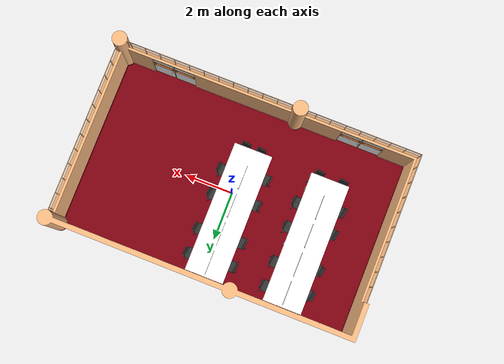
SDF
<?xml version="1.0" ?>
<sdf version="1.7">
  <model name="marlab">
    <!-- make the model dynamic -->
    <static>true</static>

    <link name="world_link">
      <!-- this dummy link holds nothing -->
      <pose>0 0 0 0 0 0</pose>
      <inertial>
        <mass>0.001</mass>
        <inertia>
          <ixx>1e-6</ixx><iyy>1e-6</iyy><izz>1e-6</izz>
        </inertia>
      </inertial>
    </link>

    <link name="floor_link">
      <pose>-6.09 -3.55 0 0 0 0</pose>
      <visual name="floor_visual">
        <geometry>
          <mesh>
            <uri>model://marlab/meshes/floor.stl</uri>
          </mesh>
        </geometry>
        <material>
          <ambient>0.5 0.0 0.06 1</ambient>
          <diffuse>0.5 0.0 0.06 1</diffuse>
        </material>
      </visual>
      <collision name="floor_collision">
        <geometry>
          <mesh><uri>model://marlab/meshes/floor.stl</uri></mesh>
        </geometry>
      </collision>
      <inertial>
        <mass>1.0</mass>
        <inertia>
          <ixx>0.1</ixx><iyy>0.1</iyy><izz>0.1</izz>
        </inertia>
      </inertial>
    </link>

    <link name="walls_link">
      <pose>-6.09 -3.55 0 0 0 0</pose>
      <visual name="walls_visual">
        <geometry>
          <mesh><uri>model://marlab/meshes/walls.stl</uri></mesh>
        </geometry>
        <material>
          <ambient>0.98 0.73 0.51 1</ambient>
          <diffuse>0.98 0.73 0.51 1</diffuse>
        </material>
      </visual>
      <collision name="walls_collision">
        <geometry><mesh><uri>model://marlab/meshes/walls.stl</uri></mesh></geometry>
      </collision>
      <inertial>
        <mass>2.0</mass>
        <inertia>
          <ixx>0.2</ixx><iyy>0.2</iyy><izz>0.2</izz>
        </inertia>
      </inertial>
    </link>

    <link name="wall_window_panes_link">
      <pose>-6.09 -3.55 0 0 0 0</pose>
      <visual name="wall_window_panes_visual">
        <geometry>
          <mesh><uri>model://marlab/meshes/wall_window_panes.stl</uri></mesh>
        </geometry>
        <material>
          <ambient>0.98 0.73 0.51 0.3</ambient>
          <diffuse>0.98 0.73 0.51 0.3</diffuse>
        </material>
      </visual>
      <collision name="wall_window_panes_collision">
        <geometry><mesh><uri>model://marlab/meshes/wall_window_panes.stl</uri></mesh></geometry>
      </collision>
      <inertial>
        <mass>2.0</mass>
        <inertia>
          <ixx>0.2</ixx><iyy>0.2</iyy><izz>0.2</izz>
        </inertia>
      </inertial>
    </link>

    <link name="window_frames_link">
      <pose>-6.09 -3.55 0 0 0 0</pose>
      <visual name="window_frames_visual">
        <geometry>
          <mesh><uri>model://marlab/meshes/window_frames.stl</uri></mesh>
        </geometry>
        <material>
          <ambient>0.88 0.88 0.88 1.0</ambient>
          <diffuse>0.88 0.88 0.88 1.0</diffuse>
        </material>
      </visual>
      <collision name="window_frames_collision">
        <geometry><mesh><uri>model://marlab/meshes/window_frames.stl</uri></mesh></geometry>
      </collision>
      <inertial>
        <mass>2.0</mass>
        <inertia>
          <ixx>0.2</ixx><iyy>0.2</iyy><izz>0.2</izz>
        </inertia>
      </inertial>
    </link>

    <link name="window_panes_link">
      <pose>-6.09 -3.55 0 0 0 0</pose>
      <visual name="window_panes_visual">
        <geometry>
          <mesh><uri>model://marlab/meshes/window_panes.stl</uri></mesh>
        </geometry>
        <material>
          <ambient>0.98 0.73 0.51 0.3</ambient>
          <diffuse>0.98 0.73 0.51 0.3</diffuse>
        </material>
      </visual>
      <collision name="window_panes_collision">
        <geometry><mesh><uri>model://marlab/meshes/window_panes.stl</uri></mesh></geometry>
      </collision>
      <inertial>
        <mass>2.0</mass>
        <inertia>
          <ixx>0.2</ixx><iyy>0.2</iyy><izz>0.2</izz>
        </inertia>
      </inertial>
    </link>

    <link name="door_windows_link">
      <pose>-6.09 -3.55 0 0 0 0</pose>
      <visual name="door_windows_visual">
        <geometry>
          <mesh><uri>model://marlab/meshes/door_windows.stl</uri></mesh>
        </geometry>
        <material>
          <ambient>0.98 0.73 0.51 0.3</ambient>
          <diffuse>0.98 0.73 0.51 0.3</diffuse>
        </material>
      </visual>
      <collision name="door_windows_collision">
        <geometry><mesh><uri>model://marlab/meshes/door_windows.stl</uri></mesh></geometry>
      </collision>
      <inertial>
        <mass>2.0</mass>
        <inertia>
          <ixx>0.2</ixx><iyy>0.2</iyy><izz>0.2</izz>
        </inertia>
      </inertial>
    </link>

    <link name="door_link">
      <pose>-6.09 -3.55 0 0 0 0</pose>
      <visual name="door_visual">
        <geometry>
          <mesh><uri>model://marlab/meshes/door.stl</uri></mesh>
        </geometry>
        <material>
          <ambient>1.0 1.0 1.0 1.0</ambient>
          <diffuse>1.0 1.0 1.0 1.0</diffuse>
        </material>
      </visual>
      <collision name="door_collision">
        <geometry><mesh><uri>model://marlab/meshes/door.stl</uri></mesh></geometry>
      </collision>
      <inertial>
        <mass>2.0</mass>
        <inertia>
          <ixx>0.2</ixx><iyy>0.2</iyy><izz>0.2</izz>
        </inertia>
      </inertial>
    </link>

    <link name="door_frame_link">
      <pose>-6.09 -3.55 0 0 0 0</pose>
      <visual name="door_frame_visual">
        <geometry>
          <mesh><uri>model://marlab/meshes/door_frame.stl</uri></mesh>
        </geometry>
        <material>
          <ambient>0.66 0.37 0.16 1.0</ambient>
          <diffuse>0.66 0.37 0.16 1.0</diffuse>
        </material>
      </visual>
      <collision name="door_frame_collision">
        <geometry><mesh><uri>model://marlab/meshes/door_frame.stl</uri></mesh></geometry>
      </collision>
      <inertial>
        <mass>2.0</mass>
        <inertia>
          <ixx>0.2</ixx><iyy>0.2</iyy><izz>0.2</izz>
        </inertia>
      </inertial>
    </link>

        <link name="door_handles_link">
      <pose>-6.09 -3.55 0 0 0 0</pose>
      <visual name="door_handles_visual">
        <geometry>
          <mesh><uri>model://marlab/meshes/door_handles.stl</uri></mesh>
        </geometry>
        <material>
          <ambient>0.753 0.753 0.753 1.0</ambient>
          <diffuse>0.753 0.753 0.753 1.0</diffuse>
        </material>
      </visual>
      <collision name="door_handles_collision">
        <geometry><mesh><uri>model://marlab/meshes/door_handles.stl</uri></mesh></geometry>
      </collision>
      <inertial>
        <mass>2.0</mass>
        <inertia>
          <ixx>0.2</ixx><iyy>0.2</iyy><izz>0.2</izz>
        </inertia>
      </inertial>
    </link>

        <link name="door2_link">
      <pose>-14 -3.55 0 0 0 0</pose>
      <visual name="door2_visual">
        <geometry>
          <mesh><uri>model://marlab/meshes/door.stl</uri></mesh>
        </geometry>
        <material>
          <ambient>1.0 1.0 1.0 1.0</ambient>
          <diffuse>1.0 1.0 1.0 1.0</diffuse>
        </material>
      </visual>
      <collision name="door2_collision">
        <geometry><mesh><uri>model://marlab/meshes/door.stl</uri></mesh></geometry>
      </collision>
      <inertial>
        <mass>2.0</mass>
        <inertia><ixx>0.2</ixx><iyy>0.2</iyy><izz>0.2</izz></inertia>
      </inertial>
    </link>

    <link name="door_windows2_link">
      <pose>-14 -3.55 0 0 0 0</pose>
      <visual name="door_windows2_visual">
        <geometry>
          <mesh><uri>model://marlab/meshes/door_windows.stl</uri></mesh>
        </geometry>
        <material>
          <ambient>0.98 0.73 0.51 0.3</ambient>
          <diffuse>0.98 0.73 0.51 0.3</diffuse>
        </material>
      </visual>
      <collision name="door_windows2_collision">
        <geometry><mesh><uri>model://marlab/meshes/door_windows.stl</uri></mesh></geometry>
      </collision>
      <inertial>
        <mass>2.0</mass>
        <inertia><ixx>0.2</ixx><iyy>0.2</iyy><izz>0.2</izz></inertia>
      </inertial>
    </link>

    <link name="door_frame2_link">
      <pose>-14 -3.55 0 0 0 0</pose>
      <visual name="door_frame2_visual">
        <geometry>
          <mesh><uri>model://marlab/meshes/door_frame.stl</uri></mesh>
        </geometry>
        <material>
          <ambient>0.66 0.37 0.16 1.0</ambient>
          <diffuse>0.66 0.37 0.16 1.0</diffuse>
        </material>
      </visual>
      <collision name="door_frame2_collision">
        <geometry><mesh><uri>model://marlab/meshes/door_frame.stl</uri></mesh></geometry>
      </collision>
      <inertial>
        <mass>2.0</mass>
        <inertia><ixx>0.2</ixx><iyy>0.2</iyy><izz>0.2</izz></inertia>
      </inertial>
    </link>

    <link name="door_handles2_link">
      <pose>-14 -3.55 0 0 0 0</pose>
      <visual name="door_handles2_visual">
        <geometry>
          <mesh><uri>model://marlab/meshes/door_handles.stl</uri></mesh>
        </geometry>
        <material>
          <ambient>0.753 0.753 0.753 1.0</ambient>
          <diffuse>0.753 0.753 0.753 1.0</diffuse>
        </material>
      </visual>
      <collision name="door_handles2_collision">
        <geometry><mesh><uri>model://marlab/meshes/door_handles.stl</uri></mesh></geometry>
      </collision>
      <inertial>
        <mass>2.0</mass>
        <inertia><ixx>0.2</ixx><iyy>0.2</iyy><izz>0.2</izz></inertia>
      </inertial>
    </link>

    <link name="tables_link">
      <pose>-6.09 -3.55 0 0 0 0</pose>
      <visual name="tables_visual">
        <geometry>
          <mesh><uri>model://marlab/meshes/tables.stl</uri></mesh>
        </geometry>
        <material>
          <ambient>1.0 1.0 1.0 1</ambient>
          <diffuse>1.0 1.0 1.0 1</diffuse>
        </material>
      </visual>
      <collision name="tables_collision">
        <geometry><mesh><uri>model://marlab/meshes/tables.stl</uri></mesh></geometry>
      </collision>
      <inertial>
        <mass>2.0</mass>
        <inertia>
          <ixx>0.2</ixx><iyy>0.2</iyy><izz>0.2</izz>
        </inertia>
      </inertial>
    </link>

    <link name="chairs_link">
      <pose>0 0 0 0 0 0</pose>
      <inertial>
        <mass>0.1</mass>
        <inertia>
          <ixx>1e-3</ixx><iyy>1e-3</iyy><izz>1e-3</izz>
        </inertia>
      </inertial>

      <!-- Row at x = -2.8 -->
      <visual name="chair_visual_1">
        <pose>-2.8  -2.20  0 0 0 0</pose>
        <geometry><mesh><uri>model://marlab/meshes/chair.stl</uri></mesh></geometry>
        <material><ambient>0.2 0.2 0.2 1</ambient> <diffuse>0.2 0.2 0.2 1</diffuse> </material>
      </visual>
      <collision name="chair_collision_1">
        <pose>-2.8  -2.20  0 0 0 0</pose>
        <geometry><mesh><uri>model://marlab/meshes/chair.stl</uri></mesh></geometry>
      </collision>

      <visual name="chair_visual_2">
        <pose>-2.8  -1.16  0 0 0 0</pose>
        <geometry><mesh><uri>model://marlab/meshes/chair.stl</uri></mesh></geometry>
        <material><ambient>0.2 0.2 0.2 1</ambient> <diffuse>0.2 0.2 0.2 1</diffuse> </material>
      </visual>
      <collision name="chair_collision_2">
        <pose>-2.8  -1.16  0 0 0 0</pose>
        <geometry><mesh><uri>model://marlab/meshes/chair.stl</uri></mesh></geometry>
      </collision>

      <visual name="chair_visual_3">
        <pose>-2.8  -3.69  0 0 0 0</pose>
        <geometry><mesh><uri>model://marlab/meshes/chair.stl</uri></mesh></geometry>
        <material><ambient>0.2 0.2 0.2 1</ambient> <diffuse>0.2 0.2 0.2 1</diffuse> </material>
      </visual>
      <collision name="chair_collision_3">
        <pose>-2.8  -3.69  0 0 0 0</pose>
        <geometry><mesh><uri>model://marlab/meshes/chair.stl</uri></mesh></geometry>
      </collision>

      <visual name="chair_visual_4">
        <pose>-2.8  -4.74  0 0 0 0</pose>
        <geometry><mesh><uri>model://marlab/meshes/chair.stl</uri></mesh></geometry>
        <material><ambient>0.2 0.2 0.2 1</ambient> <diffuse>0.2 0.2 0.2 1</diffuse> </material>
      </visual>
      <collision name="chair_collision_4">
        <pose>-2.8  -4.74  0 0 0 0</pose>
        <geometry><mesh><uri>model://marlab/meshes/chair.stl</uri></mesh></geometry>
      </collision>

      <!-- Row at x = -6.06 -->
      <visual name="chair_visual_5">
        <pose>-6.06 -1.06  0 0 0 0</pose>
        <geometry><mesh><uri>model://marlab/meshes/chair.stl</uri></mesh></geometry>
        <material><ambient>0.2 0.2 0.2 1</ambient> <diffuse>0.2 0.2 0.2 1</diffuse> </material>
      </visual>
      <collision name="chair_collision_5">
        <pose>-6.06 -1.06  0 0 0 0</pose>
        <geometry><mesh><uri>model://marlab/meshes/chair.stl</uri></mesh></geometry>
      </collision>

      <visual name="chair_visual_6">
        <pose>-6.06 -2.08  0 0 0 0</pose>
        <geometry><mesh><uri>model://marlab/meshes/chair.stl</uri></mesh></geometry>
        <material><ambient>0.2 0.2 0.2 1</ambient> <diffuse>0.2 0.2 0.2 1</diffuse> </material>
      </visual>
      <collision name="chair_collision_6">
        <pose>-6.06 -2.08  0 0 0 0</pose>
        <geometry><mesh><uri>model://marlab/meshes/chair.stl</uri></mesh></geometry>
      </collision>

      <visual name="chair_visual_7">
        <pose>-6.06 -3.56  0 0 0 0</pose>
        <geometry><mesh><uri>model://marlab/meshes/chair.stl</uri></mesh></geometry>
        <material><ambient>0.2 0.2 0.2 1</ambient> <diffuse>0.2 0.2 0.2 1</diffuse> </material>
      </visual>
      <collision name="chair_collision_7">
        <pose>-6.06 -3.56  0 0 0 0</pose>
        <geometry><mesh><uri>model://marlab/meshes/chair.stl</uri></mesh></geometry>
      </collision>

      <visual name="chair_visual_8">
        <pose>-6.06 -4.60  0 0 0 0</pose>
        <geometry><mesh><uri>model://marlab/meshes/chair.stl</uri></mesh></geometry>
        <material><ambient>0.2 0.2 0.2 1</ambient> <diffuse>0.2 0.2 0.2 1</diffuse> </material>
      </visual>
      <collision name="chair_collision_8">
        <pose>-6.06 -4.60  0 0 0 0</pose>
        <geometry><mesh><uri>model://marlab/meshes/chair.stl</uri></mesh></geometry>
      </collision>

      <!-- Row at x = -4.4 -->
      <visual name="chair_visual_9">
        <pose>2.4 3.10 0 0 0 3.14159 </pose>
        <geometry><mesh><uri>model://marlab/meshes/chair.stl</uri></mesh></geometry>
        <material><ambient>0.2 0.2 0.2 1</ambient> <diffuse>0.2 0.2 0.2 1</diffuse> </material>
      </visual>
      <collision name="chair_collision_9">
        <pose>2.4  3.10  0 0 0 0</pose>
        <geometry><mesh><uri>model://marlab/meshes/chair.stl</uri></mesh></geometry>
      </collision>

      <visual name="chair_visual_10">
        <pose>2.4  4.20  0 0 0 3.14159</pose>
        <geometry><mesh><uri>model://marlab/meshes/chair.stl</uri></mesh></geometry>
        <material><ambient>0.2 0.2 0.2 1</ambient> <diffuse>0.2 0.2 0.2 1</diffuse> </material>
      </visual>
      <collision name="chair_collision_10">
        <pose>2.4  4.20  0 0 0 0</pose>
        <geometry><mesh><uri>model://marlab/meshes/chair.stl</uri></mesh></geometry>
      </collision>

      <visual name="chair_visual_11">
        <pose>2.4  5.80  0 0 0 3.14159</pose>
        <geometry><mesh><uri>model://marlab/meshes/chair.stl</uri></mesh></geometry>
        <material><ambient>0.2 0.2 0.2 1</ambient> <diffuse>0.2 0.2 0.2 1</diffuse> </material>
      </visual>
      <collision name="chair_collision_11">
        <pose>2.4  5.80  0 0 0 0</pose>
        <geometry><mesh><uri>model://marlab/meshes/chair.stl</uri></mesh></geometry>
      </collision>

      <visual name="chair_visual_12">
        <pose>2.4  6.80  0 0 0 3.14159</pose>
        <geometry><mesh><uri>model://marlab/meshes/chair.stl</uri></mesh></geometry>
        <material><ambient>0.2 0.2 0.2 1</ambient> <diffuse>0.2 0.2 0.2 1</diffuse> </material>
      </visual>
      <collision name="chair_collision_12">
        <pose>2.4  6.80  0 0 0 0</pose>
        <geometry><mesh><uri>model://marlab/meshes/chair.stl</uri></mesh></geometry>
      </collision>

      <!-- Row at x = -0.2 -->
      <visual name="chair_visual_13">
        <pose>-0.8 3.20  0 0 0 3.14159</pose>
        <geometry><mesh><uri>model://marlab/meshes/chair.stl</uri></mesh></geometry>
        <material><ambient>0.2 0.2 0.2 1</ambient> <diffuse>0.2 0.2 0.2 1</diffuse> </material>
      </visual>
      <collision name="chair_collision_13">
        <pose>-0.8 3.20  0 0 0 3.14159</pose>
        <geometry><mesh><uri>model://marlab/meshes/chair.stl</uri></mesh></geometry>
      </collision>

      <visual name="chair_visual_14">
        <pose>-0.8 4.16  0 0 0 3.14159</pose>
        <geometry><mesh><uri>model://marlab/meshes/chair.stl</uri></mesh></geometry>
        <material><ambient>0.2 0.2 0.2 1</ambient> <diffuse>0.2 0.2 0.2 1</diffuse> </material>
      </visual>
      <collision name="chair_collision_14">
        <pose>-0.8 4.16  0 0 0 3.14159</pose>
        <geometry><mesh><uri>model://marlab/meshes/chair.stl</uri></mesh></geometry>
      </collision>

      <visual name="chair_visual_15">
        <pose>-0.8 5.69  0 0 0 3.14159</pose>
        <geometry><mesh><uri>model://marlab/meshes/chair.stl</uri></mesh></geometry>
        <material><ambient>0.2 0.2 0.2 1</ambient> <diffuse>0.2 0.2 0.2 1</diffuse> </material>
      </visual>
      <collision name="chair_collision_15">
        <pose>-0.8 5.69  0 0 0 3.14159</pose>
        <geometry><mesh><uri>model://marlab/meshes/chair.stl</uri></mesh></geometry>
      </collision>

      <visual name="chair_visual_16">
        <pose>-0.8 6.74  0 0 0 3.14159</pose>
        <geometry><mesh><uri>model://marlab/meshes/chair.stl</uri></mesh></geometry>
        <material><ambient>0.2 0.2 0.2 1</ambient> <diffuse>0.2 0.2 0.2 1</diffuse> </material>
      </visual>
      <collision name="chair_collision_16">
        <pose>-0.8 6.74  0 0 0 3.14159</pose>
        <geometry><mesh><uri>model://marlab/meshes/chair.stl</uri></mesh></geometry>
      </collision>

      <!-- Two chairs at y = -5.9 -->
      <visual name="chair_visual_17">
        <pose>-7 1.70  0 0 0 -1.575</pose>
        <geometry><mesh><uri>model://marlab/meshes/chair.stl</uri></mesh></geometry>
        <material><ambient>0.2 0.2 0.2 1</ambient> <diffuse>0.2 0.2 0.2 1</diffuse> </material>
      </visual>
      <collision name="chair_collision_17">
        <pose>-7 1.70  0 0 0 -1.575</pose>
        <geometry><mesh><uri>model://marlab/meshes/chair.stl</uri></mesh></geometry>
      </collision>

      <visual name="chair_visual_18">
        <pose>-8 1.70  0 0 0 -1.575</pose>
        <geometry><mesh><uri>model://marlab/meshes/chair.stl</uri></mesh></geometry>
        <material><ambient>0.2 0.2 0.2 1</ambient> <diffuse>0.2 0.2 0.2 1</diffuse> </material>
      </visual>
      <collision name="chair_collision_18">
        <pose>-8 1.70  0 0 0 -1.575</pose>
        <geometry><mesh><uri>model://marlab/meshes/chair.stl</uri></mesh></geometry>
      </collision>

      <!-- Two chairs at y = -6.0 -->
      <visual name="chair_visual_19">
        <pose>-4.5 1.70  0 0 0 -1.575</pose>
        <geometry><mesh><uri>model://marlab/meshes/chair.stl</uri></mesh></geometry>
        <material><ambient>0.2 0.2 0.2 1</ambient> <diffuse>0.2 0.2 0.2 1</diffuse> </material>
      </visual>
      <collision name="chair_collision_19">
        <pose>-4.5 1.70  0 0 0 -1.575</pose>
        <geometry><mesh><uri>model://marlab/meshes/chair.stl</uri></mesh></geometry>
      </collision>

      <visual name="chair_visual_20">
        <pose>-3.85 1.70   0 0 0 -1.575</pose>
        <geometry><mesh><uri>model://marlab/meshes/chair.stl</uri></mesh></geometry>
        <material><ambient>0.2 0.2 0.2 1</ambient> <diffuse>0.2 0.2 0.2 1</diffuse> </material>
      </visual>
      <collision name="chair_collision_20">
        <pose>-3.85 1.70   0 0 0 -1.575</pose>
        <geometry><mesh><uri>model://marlab/meshes/chair.stl</uri></mesh></geometry>
      </collision>
    </link>

    <joint name="floor_to_world" type="fixed">
      <parent>world_link</parent>
      <child>floor_link</child>
      <pose>0 0 0 0 0 0</pose>
    </joint>
    <joint name="walls_to_floor" type="fixed">
      <parent>floor_link</parent>
      <child>walls_link</child>
      <pose>0 0 0 0 0 0</pose>
    </joint>
    <joint name="tables_to_floor" type="fixed">
      <parent>floor_link</parent>
      <child>tables_link</child>
      <pose>0 0 0 0 0 0</pose>
    </joint>
    <joint name="chairs_to_floor" type="fixed">
      <parent>floor_link</parent>
      <child>chairs_link</child>
      <pose>0 0 0 0 0 0</pose>
    </joint>
    <joint name="wall_window_panes_to_floor" type="fixed">
      <parent>floor_link</parent>
      <child>wall_window_panes_link</child>
      <pose>0 0 0 0 0 0</pose>
    </joint>
    <joint name="window_panes_to_floor" type="fixed">
      <parent>floor_link</parent>
      <child>window_panes_link</child>
      <pose>0 0 0 0 0 0</pose>
    </joint>
    <joint name="window_frames_to_floor" type="fixed">
      <parent>floor_link</parent>
      <child>window_frames_link</child>
      <pose>0 0 0 0 0 0</pose>
    </joint>
    <joint name="door_windows_to_floor" type="fixed">
      <parent>floor_link</parent>
      <child>door_windows_link</child>
      <pose>0 0 0 0 0 0</pose>
    </joint>
    <joint name="door_to_floor" type="fixed">
      <parent>floor_link</parent>
      <child>door_link</child>
      <pose>0 0 0 0 0 0</pose>
    </joint>

  </model>
</sdf>
